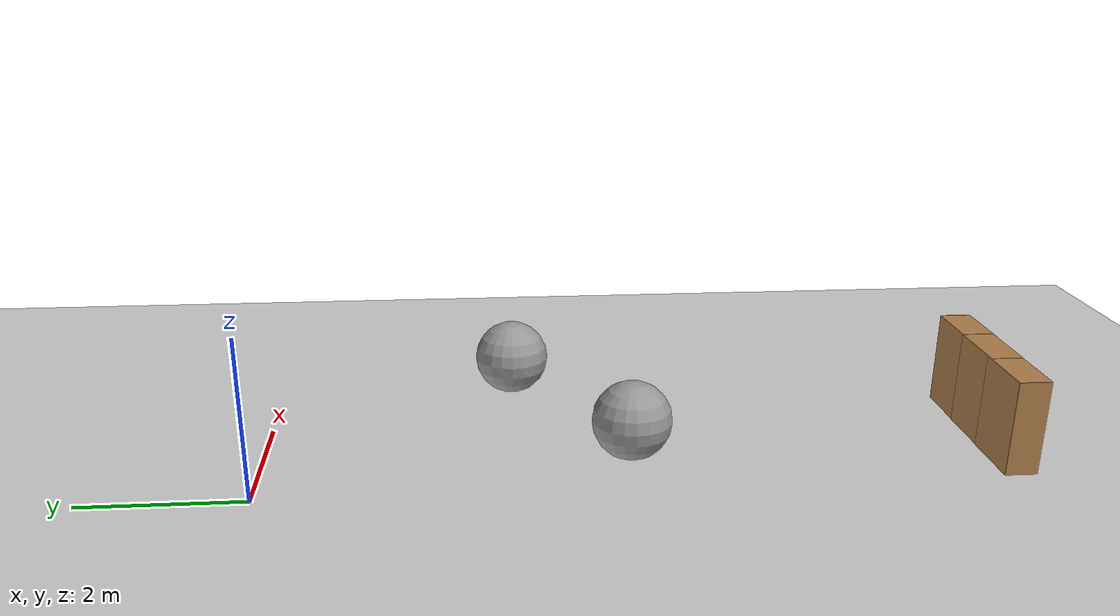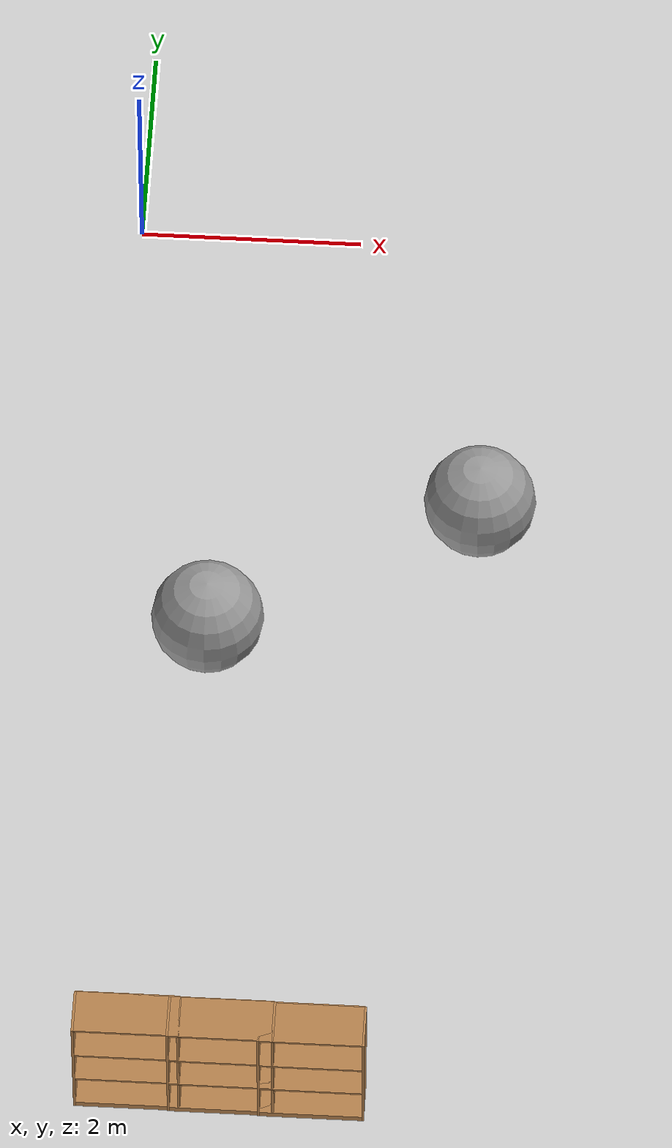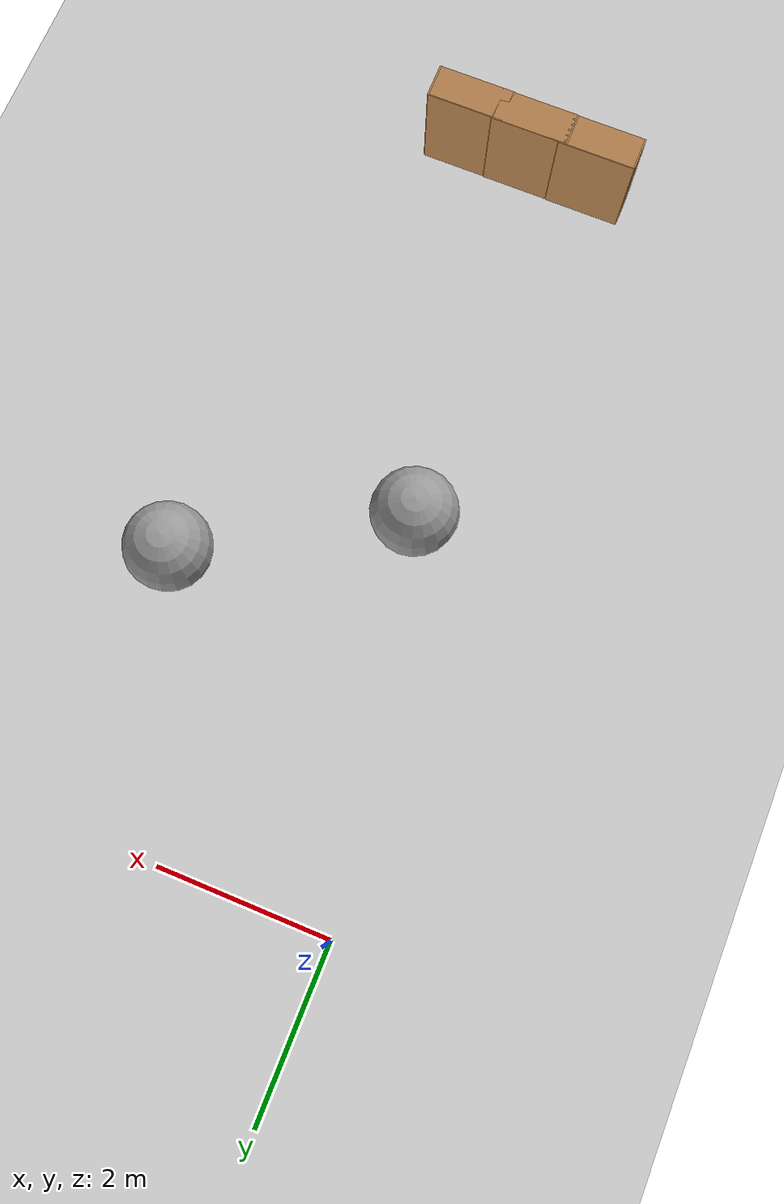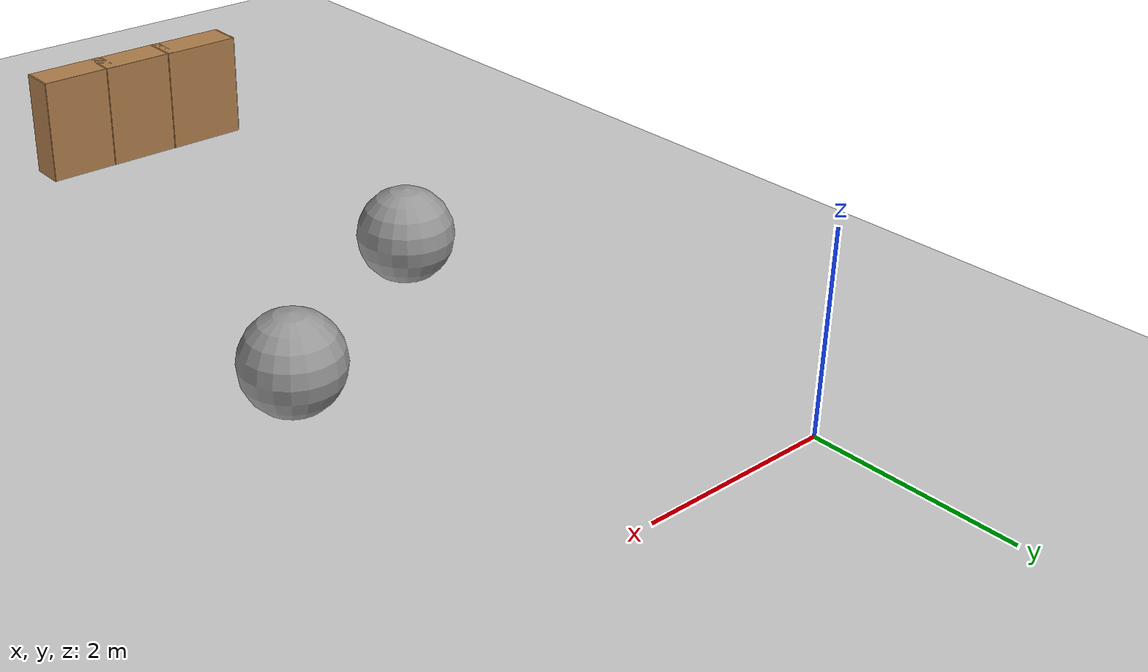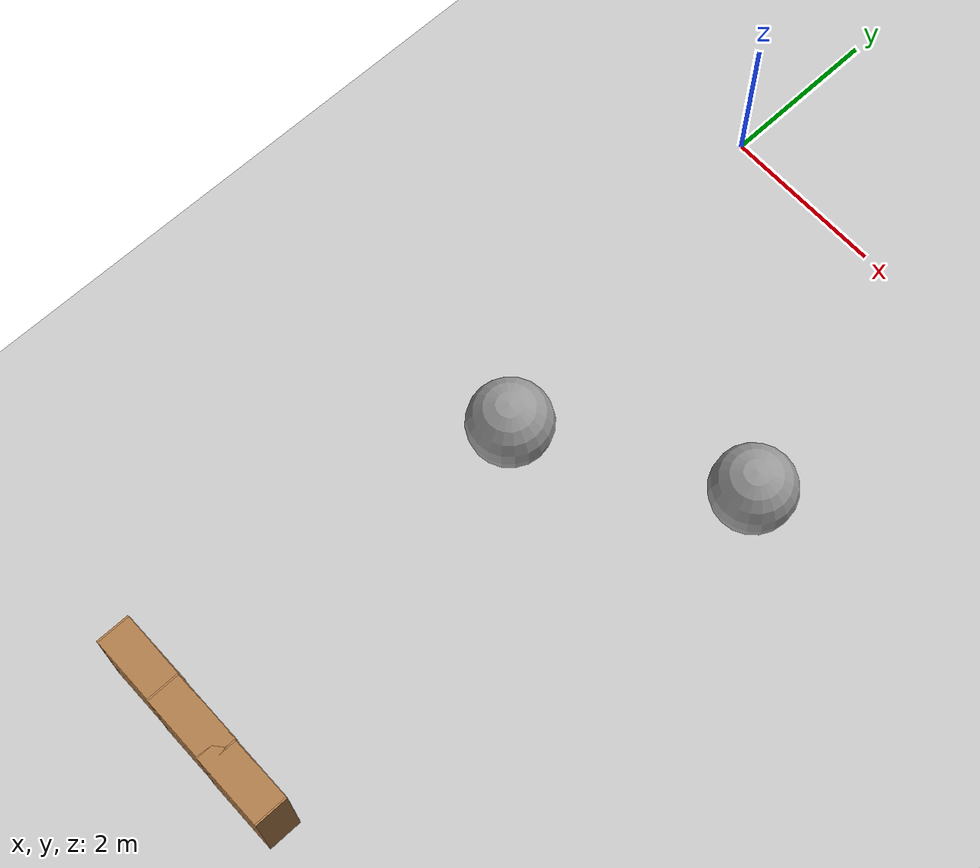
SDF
<sdf version="1.7">
 <world name="default">
  <model name="ground_plane">
   <static>1</static>
   <link name="link">
    <collision name="collision">
     <geometry><plane><normal>0 0 1</normal><size>100 100</size></plane></geometry>
     <surface>
      <contact><collide_bitmask>65535</collide_bitmask></contact>
      <friction><ode><mu>100</mu><mu2>50</mu2></ode></friction>
     </surface>
    </collision>
    <visual name="visual">
     <cast_shadows>0</cast_shadows>
     <geometry><plane><normal>0 0 1</normal><size>100 100</size></plane></geometry>
     <material>
      <script><uri>file://media/materials/scripts/gazebo.material</uri><name>Gazebo/Grey</name></script>
     </material>
    </visual>
   </link>
  </model>
  <model name="bookshelf_clone_0">
   <static>1</static>
   <link name="link">
    <inertial><mass>1</mass></inertial>
    <collision name="back">
     <pose>0 0.005 0.6 0 -0 0</pose>
     <geometry><box><size>0.9 0.01 1.2</size></box></geometry>
    </collision>
    <visual name="visual1">
     <pose>0 0.005 0.6 0 -0 0</pose>
     <geometry><box><size>0.9 0.01 1.2</size></box></geometry>
     <material>
      <script><uri>file://media/materials/scripts/gazebo.material</uri><name>Gazebo/Wood</name></script>
     </material>
    </visual>
    <collision name="left_side">
     <pose>0.45 -0.195 0.6 0 -0 0</pose>
     <geometry><box><size>0.02 0.4 1.2</size></box></geometry>
    </collision>
    <visual name="visual2">
     <pose>0.45 -0.195 0.6 0 -0 0</pose>
     <geometry><box><size>0.02 0.4 1.2</size></box></geometry>
     <material>
      <script><uri>file://media/materials/scripts/gazebo.material</uri><name>Gazebo/Wood</name></script>
     </material>
    </visual>
    <collision name="right_side">
     <pose>-0.45 -0.195 0.6 0 -0 0</pose>
     <geometry><box><size>0.02 0.4 1.2</size></box></geometry>
    </collision>
    <visual name="visual3">
     <pose>-0.45 -0.195 0.6 0 -0 0</pose>
     <geometry><box><size>0.02 0.4 1.2</size></box></geometry>
     <material>
      <script><uri>file://media/materials/scripts/gazebo.material</uri><name>Gazebo/Wood</name></script>
     </material>
    </visual>
    <collision name="bottom">
     <pose>0 -0.195 0.03 0 -0 0</pose>
     <geometry><box><size>0.88 0.4 0.06</size></box></geometry>
    </collision>
    <visual name="visual4">
     <pose>0 -0.195 0.03 0 -0 0</pose>
     <geometry><box><size>0.88 0.4 0.06</size></box></geometry>
     <material>
      <script><uri>file://media/materials/scripts/gazebo.material</uri><name>Gazebo/Wood</name></script>
     </material>
    </visual>
    <collision name="top">
     <pose>0 -0.195 1.19 0 -0 0</pose>
     <geometry><box><size>0.88 0.4 0.02</size></box></geometry>
    </collision>
    <visual name="visual5">
     <pose>0 -0.195 1.19 0 -0 0</pose>
     <geometry><box><size>0.88 0.4 0.02</size></box></geometry>
     <material>
      <script><uri>file://media/materials/scripts/gazebo.material</uri><name>Gazebo/Wood</name></script>
     </material>
    </visual>
    <collision name="low_shelf">
     <pose>0 -0.195 0.43 0 -0 0</pose>
     <geometry><box><size>0.88 0.4 0.02</size></box></geometry>
    </collision>
    <visual name="visual6">
     <pose>0 -0.195 0.43 0 -0 0</pose>
     <geometry><box><size>0.88 0.4 0.02</size></box></geometry>
     <material>
      <script><uri>file://media/materials/scripts/gazebo.material</uri><name>Gazebo/Wood</name></script>
     </material>
    </visual>
    <collision name="high_shelf">
     <pose>0 -0.195 0.8 0 -0 0</pose>
     <geometry><box><size>0.88 0.4 0.02</size></box></geometry>
    </collision>
    <visual name="visual7">
     <pose>0 -0.195 0.8 0 -0 0</pose>
     <geometry><box><size>0.88 0.4 0.02</size></box></geometry>
     <material>
      <script><uri>file://media/materials/scripts/gazebo.material</uri><name>Gazebo/Wood</name></script>
     </material>
    </visual>
   </link>
   <pose>0.492099 -9.00778 0 0 -0 0</pose>
  </model>
  <model name="bookshelf_clone_1">
   <static>1</static>
   <link name="link">
    <inertial><mass>1</mass></inertial>
    <collision name="back">
     <pose>0 0.005 0.6 0 -0 0</pose>
     <geometry><box><size>0.9 0.01 1.2</size></box></geometry>
    </collision>
    <visual name="visual1">
     <pose>0 0.005 0.6 0 -0 0</pose>
     <geometry><box><size>0.9 0.01 1.2</size></box></geometry>
     <material>
      <script><uri>file://media/materials/scripts/gazebo.material</uri><name>Gazebo/Wood</name></script>
     </material>
    </visual>
    <collision name="left_side">
     <pose>0.45 -0.195 0.6 0 -0 0</pose>
     <geometry><box><size>0.02 0.4 1.2</size></box></geometry>
    </collision>
    <visual name="visual2">
     <pose>0.45 -0.195 0.6 0 -0 0</pose>
     <geometry><box><size>0.02 0.4 1.2</size></box></geometry>
     <material>
      <script><uri>file://media/materials/scripts/gazebo.material</uri><name>Gazebo/Wood</name></script>
     </material>
    </visual>
    <collision name="right_side">
     <pose>-0.45 -0.195 0.6 0 -0 0</pose>
     <geometry><box><size>0.02 0.4 1.2</size></box></geometry>
    </collision>
    <visual name="visual3">
     <pose>-0.45 -0.195 0.6 0 -0 0</pose>
     <geometry><box><size>0.02 0.4 1.2</size></box></geometry>
     <material>
      <script><uri>file://media/materials/scripts/gazebo.material</uri><name>Gazebo/Wood</name></script>
     </material>
    </visual>
    <collision name="bottom">
     <pose>0 -0.195 0.03 0 -0 0</pose>
     <geometry><box><size>0.88 0.4 0.06</size></box></geometry>
    </collision>
    <visual name="visual4">
     <pose>0 -0.195 0.03 0 -0 0</pose>
     <geometry><box><size>0.88 0.4 0.06</size></box></geometry>
     <material>
      <script><uri>file://media/materials/scripts/gazebo.material</uri><name>Gazebo/Wood</name></script>
     </material>
    </visual>
    <collision name="top">
     <pose>0 -0.195 1.19 0 -0 0</pose>
     <geometry><box><size>0.88 0.4 0.02</size></box></geometry>
    </collision>
    <visual name="visual5">
     <pose>0 -0.195 1.19 0 -0 0</pose>
     <geometry><box><size>0.88 0.4 0.02</size></box></geometry>
     <material>
      <script><uri>file://media/materials/scripts/gazebo.material</uri><name>Gazebo/Wood</name></script>
     </material>
    </visual>
    <collision name="low_shelf">
     <pose>0 -0.195 0.43 0 -0 0</pose>
     <geometry><box><size>0.88 0.4 0.02</size></box></geometry>
    </collision>
    <visual name="visual6">
     <pose>0 -0.195 0.43 0 -0 0</pose>
     <geometry><box><size>0.88 0.4 0.02</size></box></geometry>
     <material>
      <script><uri>file://media/materials/scripts/gazebo.material</uri><name>Gazebo/Wood</name></script>
     </material>
    </visual>
    <collision name="high_shelf">
     <pose>0 -0.195 0.8 0 -0 0</pose>
     <geometry><box><size>0.88 0.4 0.02</size></box></geometry>
    </collision>
    <visual name="visual7">
     <pose>0 -0.195 0.8 0 -0 0</pose>
     <geometry><box><size>0.88 0.4 0.02</size></box></geometry>
     <material>
      <script><uri>file://media/materials/scripts/gazebo.material</uri><name>Gazebo/Wood</name></script>
     </material>
    </visual>
   </link>
   <pose>1.30161 -9.01474 0 0 -0 0</pose>
  </model>
  <model name="bookshelf_clone_2">
   <static>1</static>
   <link name="link">
    <inertial><mass>1</mass></inertial>
    <collision name="back">
     <pose>0 0.005 0.6 0 -0 0</pose>
     <geometry><box><size>0.9 0.01 1.2</size></box></geometry>
    </collision>
    <visual name="visual1">
     <pose>0 0.005 0.6 0 -0 0</pose>
     <geometry><box><size>0.9 0.01 1.2</size></box></geometry>
     <material>
      <script><uri>file://media/materials/scripts/gazebo.material</uri><name>Gazebo/Wood</name></script>
     </material>
    </visual>
    <collision name="left_side">
     <pose>0.45 -0.195 0.6 0 -0 0</pose>
     <geometry><box><size>0.02 0.4 1.2</size></box></geometry>
    </collision>
    <visual name="visual2">
     <pose>0.45 -0.195 0.6 0 -0 0</pose>
     <geometry><box><size>0.02 0.4 1.2</size></box></geometry>
     <material>
      <script><uri>file://media/materials/scripts/gazebo.material</uri><name>Gazebo/Wood</name></script>
     </material>
    </visual>
    <collision name="right_side">
     <pose>-0.45 -0.195 0.6 0 -0 0</pose>
     <geometry><box><size>0.02 0.4 1.2</size></box></geometry>
    </collision>
    <visual name="visual3">
     <pose>-0.45 -0.195 0.6 0 -0 0</pose>
     <geometry><box><size>0.02 0.4 1.2</size></box></geometry>
     <material>
      <script><uri>file://media/materials/scripts/gazebo.material</uri><name>Gazebo/Wood</name></script>
     </material>
    </visual>
    <collision name="bottom">
     <pose>0 -0.195 0.03 0 -0 0</pose>
     <geometry><box><size>0.88 0.4 0.06</size></box></geometry>
    </collision>
    <visual name="visual4">
     <pose>0 -0.195 0.03 0 -0 0</pose>
     <geometry><box><size>0.88 0.4 0.06</size></box></geometry>
     <material>
      <script><uri>file://media/materials/scripts/gazebo.material</uri><name>Gazebo/Wood</name></script>
     </material>
    </visual>
    <collision name="top">
     <pose>0 -0.195 1.19 0 -0 0</pose>
     <geometry><box><size>0.88 0.4 0.02</size></box></geometry>
    </collision>
    <visual name="visual5">
     <pose>0 -0.195 1.19 0 -0 0</pose>
     <geometry><box><size>0.88 0.4 0.02</size></box></geometry>
     <material>
      <script><uri>file://media/materials/scripts/gazebo.material</uri><name>Gazebo/Wood</name></script>
     </material>
    </visual>
    <collision name="low_shelf">
     <pose>0 -0.195 0.43 0 -0 0</pose>
     <geometry><box><size>0.88 0.4 0.02</size></box></geometry>
    </collision>
    <visual name="visual6">
     <pose>0 -0.195 0.43 0 -0 0</pose>
     <geometry><box><size>0.88 0.4 0.02</size></box></geometry>
     <material>
      <script><uri>file://media/materials/scripts/gazebo.material</uri><name>Gazebo/Wood</name></script>
     </material>
    </visual>
    <collision name="high_shelf">
     <pose>0 -0.195 0.8 0 -0 0</pose>
     <geometry><box><size>0.88 0.4 0.02</size></box></geometry>
    </collision>
    <visual name="visual7">
     <pose>0 -0.195 0.8 0 -0 0</pose>
     <geometry><box><size>0.88 0.4 0.02</size></box></geometry>
     <material>
      <script><uri>file://media/materials/scripts/gazebo.material</uri><name>Gazebo/Wood</name></script>
     </material>
    </visual>
   </link>
   <pose>2.07805 -9.02126 0 0 -0 0</pose>
  </model>
  <model name="unit_sphere">
   <pose>3.23547 -3.17431 0.5 0 -0 0</pose>
   <link name="link">
    <inertial>
     <mass>1</mass>
     <inertia><ixx>0.1</ixx><ixy>0</ixy><ixz>0</ixz><iyy>0.1</iyy><iyz>0</iyz><izz>0.1</izz></inertia>
    </inertial>
    <collision name="collision"><geometry><sphere><radius>0.5</radius></sphere></geometry></collision>
    <visual name="visual">
     <geometry><sphere><radius>0.5</radius></sphere></geometry>
     <material>
      <script><name>Gazebo/Grey</name><uri>file://media/materials/scripts/gazebo.material</uri></script>
     </material>
    </visual>
   </link>
  </model>
  <model name="unit_sphere_1">
   <pose>0.889695 -4.56109 0.5 0 -0 0</pose>
   <link name="link">
    <inertial>
     <mass>1</mass>
     <inertia><ixx>0.1</ixx><ixy>0</ixy><ixz>0</ixz><iyy>0.1</iyy><iyz>0</iyz><izz>0.1</izz></inertia>
    </inertial>
    <collision name="collision"><geometry><sphere><radius>0.5</radius></sphere></geometry></collision>
    <visual name="visual">
     <geometry><sphere><radius>0.5</radius></sphere></geometry>
     <material>
      <script><name>Gazebo/Grey</name><uri>file://media/materials/scripts/gazebo.material</uri></script>
     </material>
    </visual>
   </link>
  </model>
 </world>
</sdf>
